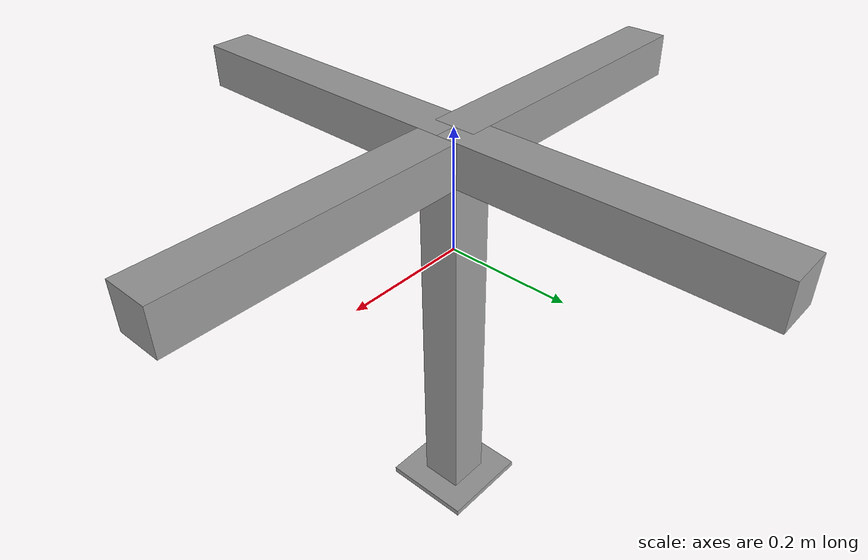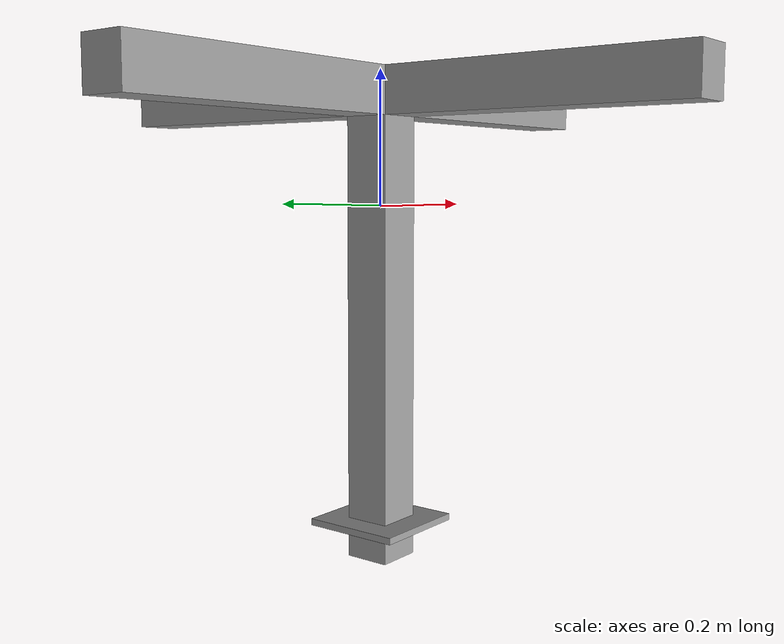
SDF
<?xml version='1.0'?>
<sdf version='1.7'>
  <model name='valve'>
    <model name='valve'>
      <link name='link_0'>
        <inertial>
          <mass>0.00466746</mass>
          <inertia>
            <ixx>0.00019249</ixx>
            <ixy>0</ixy>
            <ixz>0</ixz>
            <iyy>0.00019249</iyy>
            <iyz>0</iyz>
            <izz>3.81e-06</izz>
          </inertia>
          <pose>0 0 0 0 0 0</pose>
        </inertial>
        <pose>0 0 -0.184167 0 -0 0</pose>
        <gravity>0</gravity>
        <self_collide>0</self_collide>
        <kinematic>0</kinematic>
        <enable_wind>0</enable_wind>
        <visual name='visual'>
          <pose>0 0 0 0 0 0</pose>
          <geometry>
            <box>
              <size>0.07 0.07 0.7</size>
            </box>
          </geometry>
          <material>
            <lighting>1</lighting>
            <script>
              <uri>file://media/materials/scripts/gazebo.material</uri>
              <name>Gazebo/Grey</name>
            </script>
            <shader type='pixel'>
              <normal_map>__default__</normal_map>
            </shader>
            <ambient>0.3 0.3 0.3 1</ambient>
            <diffuse>0.7 0.7 0.7 1</diffuse>
            <specular>0.01 0.01 0.01 1</specular>
            <emissive>0 0 0 1</emissive>
          </material>
          <transparency>0</transparency>
          <cast_shadows>1</cast_shadows>
        </visual>
      </link>
      <link name='link_0_clone'>
        <inertial>
          <mass>0.00466746</mass>
          <inertia>
            <ixx>0.00019249</ixx>
            <ixy>0</ixy>
            <ixz>0</ixz>
            <iyy>0.00019249</iyy>
            <iyz>0</iyz>
            <izz>3.81e-06</izz>
          </inertia>
          <pose>0 0 0 0 -0 0</pose>
        </inertial>
        <pose>0 0 -0.479167 0 -0 0</pose>
        <gravity>0</gravity>
        <self_collide>0</self_collide>
        <kinematic>0</kinematic>
        <enable_wind>0</enable_wind>
        <visual name='visual'>
          <pose>0 0 0 0 -0 0</pose>
          <geometry>
            <box>
              <size>0.15 0.15 0.01</size>
            </box>
          </geometry>
          <material>
            <lighting>1</lighting>
            <script>
              <uri>file://media/materials/scripts/gazebo.material</uri>
              <name>Gazebo/Grey</name>
            </script>
            <shader type='pixel'>
              <normal_map>__default__</normal_map>
            </shader>
            <ambient>0.3 0.3 0.3 1</ambient>
            <diffuse>0.7 0.7 0.7 1</diffuse>
            <specular>0.01 0.01 0.01 1</specular>
            <emissive>0 0 0 1</emissive>
          </material>
          <transparency>0</transparency>
          <cast_shadows>1</cast_shadows>
        </visual>
      </link>
      <link name='link_0_clone_clone'>
        <inertial>
          <mass>0.00466746</mass>
          <inertia>
            <ixx>0.00019249</ixx>
            <ixy>0</ixy>
            <ixz>0</ixz>
            <iyy>0.00019249</iyy>
            <iyz>0</iyz>
            <izz>3.81e-06</izz>
          </inertia>
          <pose>0 0 0 0 -0 0</pose>
        </inertial>
        <pose>0 -0.25 0.165833 -1.5708 0 0</pose>
        <gravity>0</gravity>
        <self_collide>0</self_collide>
        <kinematic>0</kinematic>
        <enable_wind>0</enable_wind>
        <visual name='visual'>
          <pose>0 0 0 0 -0 0</pose>
          <geometry>
            <box>
              <size>0.07 0.07 0.5</size>
            </box>
          </geometry>
          <material>
            <lighting>1</lighting>
            <script>
              <uri>file://media/materials/scripts/gazebo.material</uri>
              <name>Gazebo/Grey</name>
            </script>
            <shader type='pixel'>
              <normal_map>__default__</normal_map>
            </shader>
            <ambient>0.3 0.3 0.3 1</ambient>
            <diffuse>0.7 0.7 0.7 1</diffuse>
            <specular>0.01 0.01 0.01 1</specular>
            <emissive>0 0 0 1</emissive>
          </material>
          <transparency>0</transparency>
          <cast_shadows>1</cast_shadows>
        </visual>
      </link>
      <link name='link_0_clone_clone_clone'>
        <inertial>
          <mass>0.00466746</mass>
          <inertia>
            <ixx>0.00019249</ixx>
            <ixy>0</ixy>
            <ixz>0</ixz>
            <iyy>0.00019249</iyy>
            <iyz>0</iyz>
            <izz>3.81e-06</izz>
          </inertia>
          <pose>0 0 0 0 -0 0</pose>
        </inertial>
        <pose>0 0.25 0.165833 -1.5708 0 0</pose>
        <gravity>0</gravity>
        <self_collide>0</self_collide>
        <kinematic>0</kinematic>
        <enable_wind>0</enable_wind>
        <visual name='visual'>
          <pose>0 0 0 0 -0 0</pose>
          <geometry>
            <box>
              <size>0.07 0.07 0.5</size>
            </box>
          </geometry>
          <material>
            <lighting>1</lighting>
            <script>
              <uri>file://media/materials/scripts/gazebo.material</uri>
              <name>Gazebo/Grey</name>
            </script>
            <shader type='pixel'>
              <normal_map>__default__</normal_map>
            </shader>
            <ambient>0.3 0.3 0.3 1</ambient>
            <diffuse>0.7 0.7 0.7 1</diffuse>
            <specular>0.01 0.01 0.01 1</specular>
            <emissive>0 0 0 1</emissive>
          </material>
          <transparency>0</transparency>
          <cast_shadows>1</cast_shadows>
        </visual>
      </link>
      <link name='link_0_clone_clone_clone_0'>
        <inertial>
          <mass>0.00466746</mass>
          <inertia>
            <ixx>0.00019249</ixx>
            <ixy>0</ixy>
            <ixz>0</ixz>
            <iyy>0.00019249</iyy>
            <iyz>0</iyz>
            <izz>3.81e-06</izz>
          </inertia>
          <pose>0 0 0 0 -0 0</pose>
        </inertial>
        <pose>-0.25 0 0.165833 1.57079 -0 1.57079</pose>
        <gravity>0</gravity>
        <self_collide>0</self_collide>
        <kinematic>0</kinematic>
        <enable_wind>0</enable_wind>
        <visual name='visual'>
          <pose>0 0 0 0 -0 0</pose>
          <geometry>
            <box>
              <size>0.07 0.07 0.5</size>
            </box>
          </geometry>
          <material>
            <lighting>1</lighting>
            <script>
              <uri>file://media/materials/scripts/gazebo.material</uri>
              <name>Gazebo/Grey</name>
            </script>
            <shader type='pixel'>
              <normal_map>__default__</normal_map>
            </shader>
            <ambient>0.3 0.3 0.3 1</ambient>
            <diffuse>0.7 0.7 0.7 1</diffuse>
            <specular>0.01 0.01 0.01 1</specular>
            <emissive>0 0 0 1</emissive>
          </material>
          <transparency>0</transparency>
          <cast_shadows>1</cast_shadows>
        </visual>
      </link>
      <link name='link_0_clone_clone_clone_0_clone'>
        <inertial>
          <mass>0.00466746</mass>
          <inertia>
            <ixx>0.00019249</ixx>
            <ixy>0</ixy>
            <ixz>0</ixz>
            <iyy>0.00019249</iyy>
            <iyz>0</iyz>
            <izz>3.81e-06</izz>
          </inertia>
          <pose>0 0 0 0 -0 0</pose>
        </inertial>
        <pose>0.25 0 0.165833 1.57079 -0 1.57079</pose>
        <gravity>0</gravity>
        <self_collide>0</self_collide>
        <kinematic>0</kinematic>
        <enable_wind>0</enable_wind>
        <visual name='visual'>
          <pose>0 0 0 0 -0 0</pose>
          <geometry>
            <box>
              <size>0.07 0.07 0.5</size>
            </box>
          </geometry>
          <material>
            <lighting>1</lighting>
            <script>
              <uri>file://media/materials/scripts/gazebo.material</uri>
              <name>Gazebo/Grey</name>
            </script>
            <shader type='pixel'>
              <normal_map>__default__</normal_map>
            </shader>
            <ambient>0.3 0.3 0.3 1</ambient>
            <diffuse>0.7 0.7 0.7 1</diffuse>
            <specular>0.01 0.01 0.01 1</specular>
            <emissive>0 0 0 1</emissive>
          </material>
          <transparency>0</transparency>
          <cast_shadows>1</cast_shadows>
        </visual>
      </link>
      <static>0</static>
      <allow_auto_disable>1</allow_auto_disable>
      <pose>0 0 0 0 -0 0</pose>
    </model>
    <static>0</static>
    <allow_auto_disable>1</allow_auto_disable>
  </model>
</sdf>
